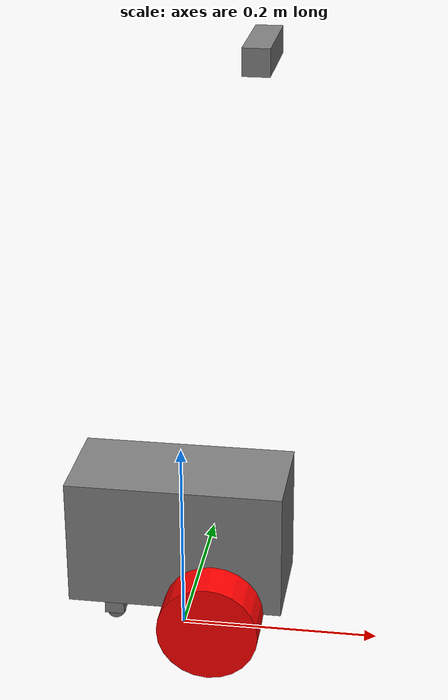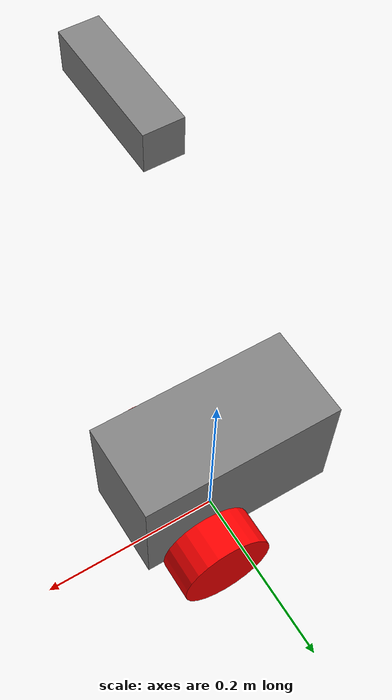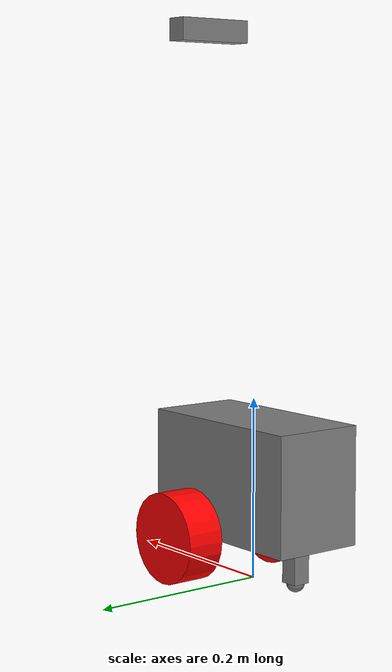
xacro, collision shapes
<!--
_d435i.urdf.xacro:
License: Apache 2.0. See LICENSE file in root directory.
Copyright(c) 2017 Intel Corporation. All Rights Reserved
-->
<?xml version="1.0"?>
<robot name="orihime-t" xmlns:xacro="http://ros.org/wiki/xacro">
    <xacro:include filename="$(find realsense_gazebo_description)/urdf/_d435i.urdf.xacro"/>
    <material name="gray">
        <color rgba="0.5 0.5 0.5 1.0"/>
    </material>
    <material name="red">
        <color rgba="1 0 0 1.0"/>
    </material>

    <!-- xacro defination -->
    <xacro:macro name="wheel_macro" params="parent prefix xyz">
        <joint name="${prefix}_joint" type="continuous">
            <parent link="${parent}"/>
            <child link="${prefix}_link"/>
            <origin xyz="${xyz}" rpy="${radians(-90)} 0 0"/>
            <axis xyz="0 0 1"/>
            <limit velocity="12.0" effort="0.4"/>
            <dynamics damping="0.1"/>
        </joint>
        <transmission name="${prefix}_trans" type="SimpleTransmission">
            <type>transmission_interface/SimpleTransmission</type>
            <joint name="${prefix}_joint">
                <hardwareInterface>hardware_interface/VelocityJointInterface</hardwareInterface>
            </joint>
            <actuator name="${prefix}_motor">
                <mechanicalReduction>1.0</mechanicalReduction>
            </actuator>
        </transmission>
        <link name="${prefix}_link">
            <inertial>
                <origin xyz="0 0 0" rpy="0 0 0"/>
                <mass value="0.1"/>
                <inertia ixx="0.0001" ixy="0.0" ixz="0.0" iyy="0.0001" iyz="0.0" izz="0.0001"/>
            </inertial>
            <visual>
                <geometry>
                    <cylinder length="0.043" radius="0.05"/>
                </geometry>
                <material name="red"/>
            </visual>
            <collision>
                <geometry>
                    <cylinder length="0.043" radius="0.05"/>
                </geometry>
            </collision>
        </link>
        <gazebo reference="${prefix}_link">
            <material>Gazebo/Red</material>
            <mu1 value="2.5"/>
            <mu2 value="2.5"/>
            <kp value="50000"/>
            <kd value="10"/>
        </gazebo>
    </xacro:macro>

    <!--this is the base link for OriHime_t-->
    <link name="base_link"/>

    <joint name="body_joint" type="fixed">
        <parent link="base_link"/>
        <child link="body_link"/>
        <origin xyz="0 0 0.115" rpy="0 0 0"/>
    </joint>

    <link name="body_link">
        <visual>
            <origin xyz="0 0 -0.05" rpy="0 0 1.57"/>
            <geometry>
                <mesh filename="package://orihime_t/meshes/OriHime-T.stl" scale="0.001 0.001 0.001"/>
            </geometry>
            <material name="gray"/>
        </visual>
        <collision>
            <origin xyz="0 0 0" rpy="0 0 0"/>
            <geometry>
                <box size="0.215 0.104 0.13"/>
            </geometry>
        </collision>
        <inertial>
            <origin xyz="-0.061 0 0" rpy="0 0 0"/>
            <mass value="5.45"/>
            <inertia ixx="0.0126" ixy="0.0" ixz="0.0" iyy="0.0287" iyz="0.0" izz="0.0258"/>
        </inertial>
        <visual>
            <origin xyz="-0.071 0 -0.085" rpy="0 0 0"/>
            <geometry>
                <box size="0.02 0.02 0.04"/>
            </geometry>
        </visual>
        <collision>
            <origin xyz="-0.071 0 -0.085" rpy="0 0 0"/>
            <geometry>
                <box size="0.02 0.02 0.04"/>
            </geometry>
        </collision>
        <visual>
            <origin xyz="-0.071 0 -0.105" rpy="0 0 0"/>
            <geometry>
                <sphere radius="0.01"/>
            </geometry>
        </visual>
        <collision>
            <origin xyz="-0.071 0 -0.105" rpy="0 0 0"/>
            <geometry>
                <sphere radius="0.01"/>
            </geometry>
        </collision>

    </link>

    <gazebo reference="body_link">
        <material>Gazebo/Gray</material>
        <mu1 value="0.5"/>
        <mu2 value="0.5"/>
    </gazebo>

    <xacro:wheel_macro prefix="left_wheel" parent="body_link" xyz="0.04 0.0735 -0.065"/>
    <xacro:wheel_macro prefix="right_wheel" parent="body_link" xyz="0.04 -0.0735 -0.065"/>

    <joint name="d435i_joint" type="fixed">
        <parent link="body_link"/>
        <child link="d435i_link"/>
        <origin xyz="0.08 0 0.475" rpy="0 0 0"/>
    </joint>
    <link name="d435i_link"/>
    <xacro:sensor_d435i parent="d435i_link">
        <origin xyz="0 0 0" rpy="0 0 0"/>
    </xacro:sensor_d435i>
    <gazebo>
        <plugin name="orihime_t_controller" filename="libgazebo_ros_diff_drive.so">
            <commandTopic>cmd_vel</commandTopic>
            <odometryTopic>odom</odometryTopic>
            <odometryFrame>odom</odometryFrame>
            <odometrySource>world</odometrySource>
            <publishOdomTF>true</publishOdomTF>
            <robotBaseFrame>body_link</robotBaseFrame>
            <publishWheelTF>false</publishWheelTF>
            <publishTf>true</publishTf>
            <publishWheelJointState>true</publishWheelJointState>
            <legacyMode>false</legacyMode>
            <updateRate>30</updateRate>
            <leftJoint>left_wheel_joint</leftJoint>
            <rightJoint>right_wheel_joint</rightJoint>
            <wheelSeparation>0.205</wheelSeparation>
            <wheelDiameter>0.1</wheelDiameter>
            <wheelAcceleration>1</wheelAcceleration>
            <wheelTorque>10</wheelTorque>
            <rosDebugLevel>na</rosDebugLevel>
        </plugin>
    </gazebo>

</robot>

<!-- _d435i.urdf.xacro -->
<robot name="sensor_d435i" xmlns:xacro="http://ros.org/wiki/xacro">
  <!--File includes-->
  <xacro:include filename="$(find realsense_gazebo_description)/urdf/_d435i.gazebo.xacro"/>

  <xacro:macro name="sensor_d435i" params="parent
                                          name:=camera
                                          topics_ns:=camera
                                          visualize:=false
                                          align_depth:=true
                                          enable_pointCloud:=false

                                          unite_imu_method:=false
                                          accel_fps:=250
                                          gyro_fps:=400

                                          clip_distance:=-1.0
                                          depth_width:=640
                                          depth_height:=480
                                          depth_fps:=30

                                          infra_width:=640
                                          infra_height:=480
                                          infra_fps:=30

                                          color_width:=640
                                          color_height:=480
                                          color_fps:=30

                                          *origin">
    <xacro:property name="M_PI" value="3.1415926535897931"/>

    <!-- The following values are approximate, and the camera node
     publishing TF values with actual calibrated camera extrinsic values -->
    <xacro:property name="d435i_cam_depth_to_left_ir_offset" value="0.0"/>
    <xacro:property name="d435i_cam_depth_to_right_ir_offset" value="-0.050"/>
    <xacro:property name="d435i_cam_depth_to_color_offset" value="0.015"/>

    <!-- The following values model the aluminum peripherial case for the
  	D435 camera, with the camera joint represented by the actual
  	peripherial camera tripod mount -->
    <xacro:property name="d435i_cam_width" value="0.090"/>
    <xacro:property name="d435i_cam_height" value="0.025"/>
    <xacro:property name="d435i_cam_depth" value="0.02505"/>
    <xacro:property name="d435i_cam_mount_from_center_offset" value="0.0149"/>

    <!-- The following offset is relative the the physical D435 camera peripherial
  	camera tripod mount -->
    <xacro:property name="d435i_cam_depth_px" value="${d435i_cam_mount_from_center_offset}"/>
    <xacro:property name="d435i_cam_depth_py" value="0.0175"/>
    <xacro:property name="d435i_cam_depth_pz" value="${d435i_cam_height/2}"/>

    <material name="${name}_aluminum">
	  <color rgba="0.5 0.5 0.5 1"/>
    </material>

    <!-- camera body, with origin at bottom screw mount -->
    <joint name="${name}_joint" type="fixed">
      <xacro:insert_block name="origin"/>
      <parent link="${parent}"/>
      <child link="${name}_bottom_screw_frame"/>
    </joint>
    <link name="${name}_bottom_screw_frame"/>

    <joint name="${name}_link_joint" type="fixed">
      <origin xyz="0 ${d435i_cam_depth_py} ${d435i_cam_depth_pz}" rpy="0 0 0"/>
      <parent link="${name}_bottom_screw_frame"/>
      <child link="${name}_link"/>
    </joint>

    <link name="${name}_link">
      <visual>
      <origin xyz="${d435i_cam_mount_from_center_offset} ${-d435i_cam_depth_py} 0" rpy="${M_PI/2} 0 ${M_PI/2}"/>
        <geometry>
          <mesh filename="package://realsense_gazebo_description/meshes/d435.dae"/>
        </geometry>
        <material name="${name}_aluminum"/>
      </visual>
      <collision>
        <origin xyz="0 ${-d435i_cam_depth_py} 0" rpy="0 0 0"/>
        <geometry>
        <box size="${d435i_cam_depth} ${d435i_cam_width} ${d435i_cam_height}"/>
        </geometry>
      </collision>
      <inertial>
        <!-- The following are not reliable values, and should not be used for modeling -->
        <mass value="0.564"/>
        <origin xyz="0 0 0"/>
        <inertia ixx="0.003881243" ixy="0.0" ixz="0.0" iyy="0.000498940" iyz="0.0" izz="0.003879257"/>
      </inertial>
    </link>

    <!-- camera depth joints and links -->
    <joint name="${name}_depth_joint" type="fixed">
      <origin xyz="0 0 0" rpy="0 0 0"/>
      <parent link="${name}_link"/>
      <child link="${name}_depth_frame"/>
    </joint>
    <link name="${name}_depth_frame"/>

    <joint name="${name}_depth_optical_joint" type="fixed">
      <origin xyz="0 0 0" rpy="${-M_PI/2} 0 ${-M_PI/2}"/>
      <parent link="${name}_depth_frame"/>
      <child link="${name}_depth_optical_frame"/>
    </joint>
    <link name="${name}_depth_optical_frame"/>

    <!-- camera left IR joints and links -->
    <joint name="${name}_left_ir_joint" type="fixed">
      <origin xyz="0 ${d435i_cam_depth_to_left_ir_offset} 0" rpy="0 0 0"/>
      <parent link="${name}_depth_frame"/>
      <child link="${name}_left_ir_frame"/>
    </joint>
    <link name="${name}_left_ir_frame"/>

    <joint name="${name}_left_ir_optical_joint" type="fixed">
      <origin xyz="0 0 0" rpy="${-M_PI/2} 0 ${-M_PI/2}"/>
      <parent link="${name}_left_ir_frame"/>
      <child link="${name}_left_ir_optical_frame"/>
    </joint>
    <link name="${name}_left_ir_optical_frame"/>

    <!-- camera right IR joints and links -->
    <joint name="${name}_right_ir_joint" type="fixed">
      <origin xyz="0 ${d435i_cam_depth_to_right_ir_offset} 0" rpy="0 0 0"/>
      <parent link="${name}_depth_frame"/>
      <child link="${name}_right_ir_frame"/>
    </joint>
    <link name="${name}_right_ir_frame"/>

    <joint name="${name}_right_ir_optical_joint" type="fixed">
      <origin xyz="0 0 0" rpy="${-M_PI/2} 0 ${-M_PI/2}"/>
      <parent link="${name}_right_ir_frame"/>
      <child link="${name}_right_ir_optical_frame"/>
    </joint>
    <link name="${name}_right_ir_optical_frame"/>

    <!-- camera color joints and links -->
    <joint name="${name}_color_joint" type="fixed">
      <origin xyz="0 ${d435i_cam_depth_to_color_offset} 0" rpy="0 0 0"/>
      <parent link="${name}_depth_frame"/>
      <child link="${name}_color_frame"/>
    </joint>
    <link name="${name}_color_frame"/>

    <joint name="${name}_color_optical_joint" type="fixed">
      <origin xyz="0 0 0" rpy="${-M_PI/2} 0 ${-M_PI/2}"/>
      <parent link="${name}_color_frame"/>
      <child link="${name}_rgb_optical_frame"/>
    </joint>
    <link name="${name}_rgb_optical_frame"/>

    <!-- camera accel joints and links -->
    <joint name="${name}_accel_joint" type="fixed">
      <origin xyz="-0.00174 0.00552 0.0176" rpy="0 0 0"/>
      <parent link="${name}_link"/>
      <child link="${name}_accel_frame"/>
    </joint>
    <link name="${name}_accel_frame"/>

    <joint name="${name}_accel_optical_joint" type="fixed">
      <origin xyz="0 0 0" rpy="${-M_PI/2} 0 ${-M_PI/2}"/>
      <parent link="${name}_accel_frame"/>
      <child link="${name}_accel_optical_frame"/>
    </joint>
    <link name="${name}_accel_optical_frame"/>

    <!-- camera gyro joints and links -->
    <joint name="${name}_gyro_joint" type="fixed">
      <origin xyz="-0.00174 0.00552 0.0176" rpy="0 0 0"/>
      <parent link="${name}_link"/>
      <child link="${name}_gyro_frame"/>
    </joint>
    <link name="${name}_gyro_frame"/>

    <joint name="${name}_gyro_optical_joint" type="fixed">
      <origin xyz="0 0 0" rpy="${-M_PI/2} 0 ${-M_PI/2}"/>
      <parent link="${name}_gyro_frame"/>
      <child link="${name}_gyro_optical_frame"/>
    </joint>
    <link name="${name}_gyro_optical_frame"/>

    <!-- Realsense Gazebo Plugin -->
    <xacro:gazebo_d435i camera_name="${name}"
                        topics_ns="${topics_ns}"
                        reference_link="${name}_link"

                        depth_optical_frame="${name}_depth_optical_frame"
                        depth_width="${depth_width}"
                        depth_height="${depth_height}"
                        depth_fps="${depth_fps}"

                        color_optical_frame="/${name}_color_optical_frame"
                        color_width="${color_width}"
                        color_height="${color_height}"
                        color_fps="${color_fps}"

                        infrared1_optical_frame="${name}_left_ir_optical_frame"
                        infrared2_optical_frame="${name}_right_ir_optical_frame"
                        infra_width="${infra_width}"
                        infra_height="${infra_height}"
                        infra_fps="${infra_fps}"

                        accel_optical_frame="${name}_accel_optical_frame"
                        gyro_optical_frame="${name}_gyro_optical_frame"
                        accel_fps="${accel_fps}"
                        gyro_fps="${gyro_fps}"

                        enable_pointCloud="${enable_pointCloud}"
                        unite_imu_method="${unite_imu_method}"
                        clip_distance="${clip_distance}"
                        align_depth="${align_depth}"
                        visualize="${visualize}"
    />

  </xacro:macro>
</robot>
